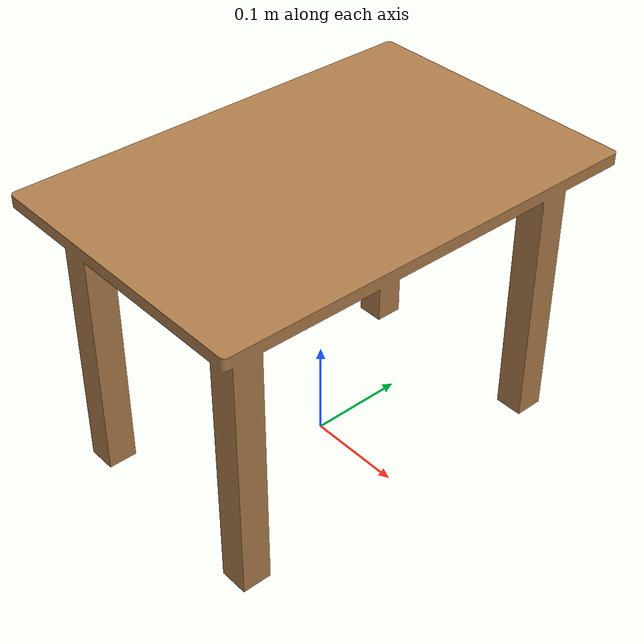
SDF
<?xml version="1.0"?>
<sdf version="1.6">
    <model name="mesa">
        <static>1</static>
        <pose>0 0 0 0 0 0</pose>
        <link name="link_00">
            <pose>0 0 0.3 0 0 1.57</pose>
            <visual name="visual_00">
                <geometry>
                    <mesh>
                        <uri>model://mesa/mesa.STL</uri>
                    </mesh>
                </geometry>
                <material>
                    <script>
                        <name>Gazebo/Wood</name>
                        <uri>file://media/materials/scripts/gazebo.material</uri>
                    </script>
                </material>
            </visual>
            <collision name="bottom">
                <pose>0 0 -0.005 0 0 0</pose>
                <geometry>
                    <box>
                        <size>0.45 0.30 0.01</size>
                    </box>
                </geometry>
                <surface>
                    <friction>
                        <ode>
                            <mu>1</mu>
                            <mu2>1</mu2>
                            <fdir1>0.0 0.0 0.0</fdir1>
                            <slip1>0.0</slip1>
                            <slip2>0.0</slip2>
                        </ode>
                    </friction>
                    <contact>
                        <ode>
                            <max_vel>0.1</max_vel>
                            <min_depth>0.001</min_depth>
                        </ode>
                    </contact>
                </surface>
                <max_contacts>10</max_contacts>
            </collision>
            <inertial>
                <pose> -0.019 0.017 0.025 0 0 0</pose>
                <inertia>
                    <ixx>9.999999999999999e-04</ixx>
                    <ixy>0.0</ixy>
                    <ixz>0.0</ixz>
                    <iyy>9.999999999999999e-04</iyy>
                    <iyz>-0.0</iyz>
                    <izz>9.999999999999999e-04</izz>
                </inertia>
            </inertial>
        </link>
    </model>
</sdf>
